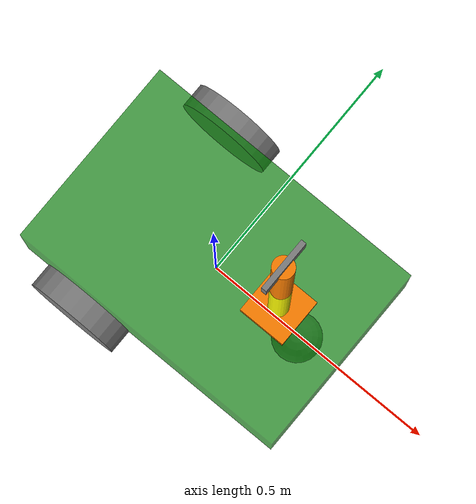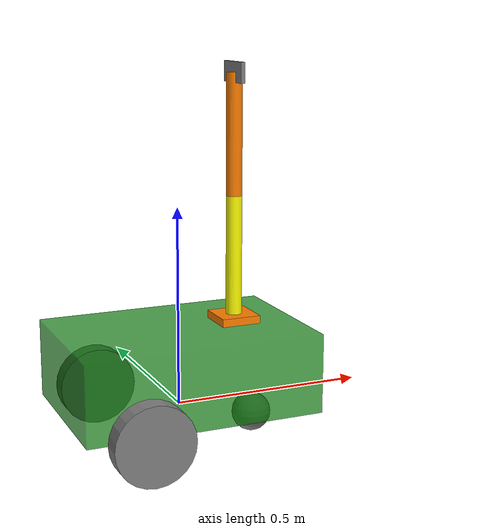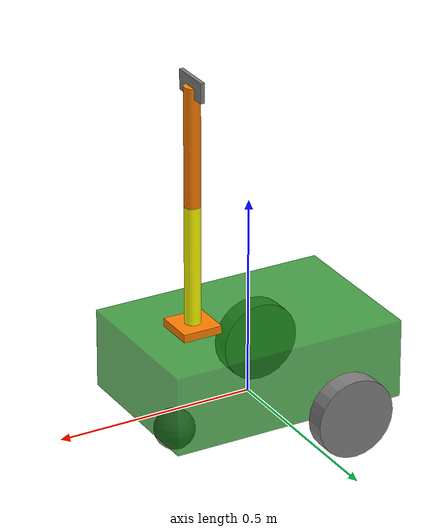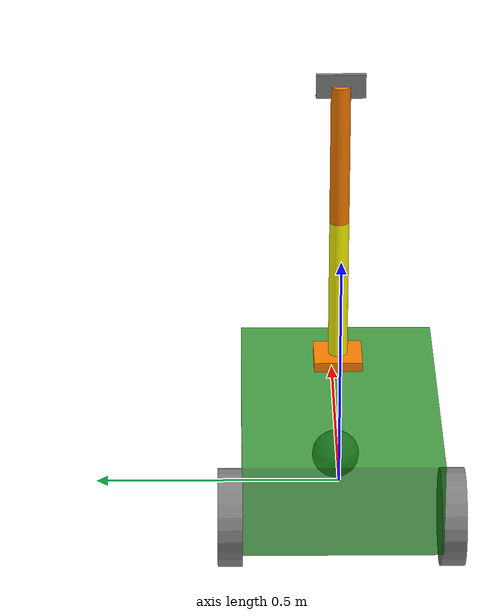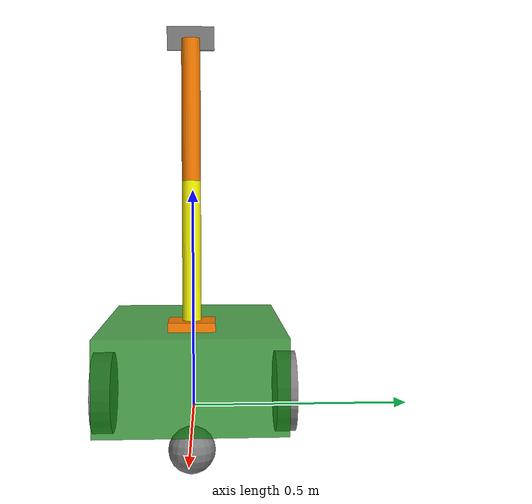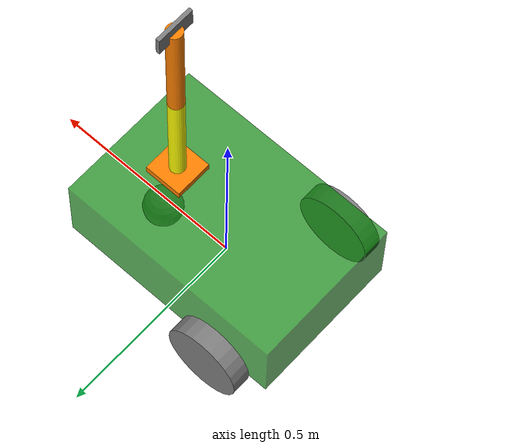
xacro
<?xml version="1.0"?>
<robot name="my_robot" xmlns:xacro="http://www.ros.org/wiki/xacro">

    <xacro:include filename="common_properties.xacro"/>
    <xacro:include filename="mobile_base.xacro" />
    <xacro:include filename="mobile_base_gazebo.xacro" />
    <xacro:include filename="arm.xacro" />
    <xacro:include filename="arm_gazebo.xacro"/>

    <joint name="mobile_base_arm_joint" type="fixed">
        <parent link="base_link"/>
        <child link="arm_base_link"/>
        <origin xyz="${base_length / 4.0} 0 ${base_height}" rpy="0 0 0"/>
    </joint>

    <!-- Only 1 camera on the arm -->
    <xacro:include filename="camera.xacro" />
</robot>

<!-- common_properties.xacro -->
<robot xmlns:xacro="http://www.ros.org/wiki/xacro">

    <material name="green">
        <color rgba="0 0.5 0 0.7"/>
    </material>

    <material name="grey">
        <color rgba="0.5 0.5 0.5 1"/>
    </material>

    <material name="orange">
        <color rgba="1.0 0.5 0.0 1.0"/>
    </material>

    <material name="yellow">
        <color rgba="1.0 1.0 0.0 1.0" />
    </material>

    <!-- Macro for solid box inertia -->
    <xacro:macro name="box_inertia" params="m l w h xyz rpy">
        <inertial>
            <origin xyz="${xyz}" rpy="${rpy}" />
            <mass value="${m}" />
            <inertia
                ixx="${(m / 12) * (h * h + l * l)}"
                iyy="${(m / 12) * (l * l + w * w)}"
                izz="${(m / 12) * (w * w + h * h)}"
                ixy="0"
                ixz="0"
                iyz="0" />
        </inertial>
    </xacro:macro>

    <!-- Macro for solid cylinder inertia -->
    <xacro:macro name="cylinder_inertia" params="m r h xyz rpy">
        <inertial>
            <origin xyz="${xyz}" rpy="${rpy}" />
            <mass value="${m}" />
            <inertia
                ixx="${(m / 12) * (3 * r * r + h * h)}"
                iyy="${(m / 12) * (3 * r * r + h * h)}"
                izz="${(m / 2) * r * r}"
                ixy="0"
                ixz="0"
                iyz="0" />
        </inertial>
    </xacro:macro>

    <!-- Macro for solid sphere inertia -->
    <xacro:macro name="sphere_inertia" params="m r xyz rpy">
        <inertial>
            <origin xyz="${xyz}" rpy="${rpy}" />
            <mass value="${m}" />
            <inertia
                ixx="${(2 / 5) * m * r * r}"
                iyy="${(2 / 5) * m * r * r}"
                izz="${(2 / 5) * m * r * r}"
                ixy="0"
                ixz="0"
                iyz="0" />
        </inertial>
    </xacro:macro>
</robot>

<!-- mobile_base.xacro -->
<robot xmlns:xacro="http://www.ros.org/wiki/xacro">

    <!-- SIZE MACROS -->
    <xacro:property name="base_length" value="0.6"/>
    <xacro:property name="base_width" value="0.4" />
    <xacro:property name="base_height" value="0.2"/>
    <xacro:property name="wheel_radius" value="0.1"/>
    <xacro:property name="wheel_length" value="0.05"/>

    <link name="base_link">
        <visual>
            <geometry>
                <box size="${base_length} ${base_width} ${base_height}"/>
            </geometry>
            <origin xyz="0 0 ${base_height / 2.0}" rpy="0 0 0"/>
            <material name="green"/>
        </visual>
        <collision>
            <geometry>
                <box size="${base_length} ${base_width} ${base_height}"/>
            </geometry>
            <origin xyz="0 0 ${base_height / 2.0}" rpy="0 0 0"/>
        </collision>
        <xacro:box_inertia m="5.0" l="${2*base_length}" w="${2*base_width}" h="${2*base_height}" xyz="0 0 ${base_height / 2.0}" rpy="0 0 0"/>
    </link>

    <xacro:macro name="wheel_link" params="prefix">
        <link name="${prefix}_wheel_link">
            <visual>
                <geometry>
                    <cylinder radius="${wheel_radius}" length="${wheel_length}"/>
                </geometry>
                <origin xyz="0 0 0" rpy="${pi / 2.0} 0 0"/>
                <material name="grey"/>
            </visual>
            <collision>
                <geometry>
                    <cylinder radius="${wheel_radius}" length="${wheel_length}"/>
                </geometry>
                <origin xyz="0 0 0" rpy="${pi / 2.0} 0 0"/>
            </collision>
            <xacro:cylinder_inertia m="1.0" r="${2*wheel_radius}" h="${2*wheel_length}" xyz="0 0 0" rpy="${pi / 2.0} 0 0"/>
        </link>
    </xacro:macro> <!-- Missing closing tag -->

    <xacro:wheel_link prefix="right" />
    <xacro:wheel_link prefix="left" />

    <link name="caster_wheel_link">
        <visual>
            <geometry>
                <sphere radius="${wheel_radius / 2.0}"/>
            </geometry>
            <origin xyz="0 0 0" rpy="0 0 0"/>
            <material name="grey"/>
        </visual>
        <collision>
            <geometry>
                <sphere radius="${wheel_radius / 2.0}"/>
            </geometry>
            <origin xyz="0 0 0" rpy="0 0 0"/>
        </collision>
        <xacro:sphere_inertia m="0.5" r="${2*wheel_radius / 2.0}" xyz="0 0 0" rpy="0 0 0"/>
    </link>

    <link name="base_footprint"/>

    <joint name="base_right_wheel_joint" type="continuous">
        <parent link="base_link"/>
        <child link="right_wheel_link"/>
        <origin xyz="${-base_length / 4.0} ${-(base_width + wheel_length) / 2.0} 0" rpy="0 0 0"/>
        <axis xyz="0 1 0"/>
    </joint>
    <joint name="base_left_wheel_joint" type="continuous">
        <parent link="base_link"/>
        <child link="left_wheel_link"/>
        <origin xyz="${-base_length / 4.0} ${(base_width + wheel_length) / 2.0} 0" rpy="0 0 0"/>
        <axis xyz="0 1 0"/>
    </joint>
    <joint name="base_caster_wheel_joint" type="fixed">
        <parent link="base_link"/>
        <child link="caster_wheel_link"/>
        <origin xyz="${base_length / 3.0} 0 ${-(wheel_radius / 2.0)}" rpy="0 0 0"/>
    </joint>
    <joint name="base_joint" type="fixed">
        <parent link="base_footprint"/>
        <child link="base_link"/>
        <origin xyz="0 0 0" rpy="0 0 0"/>
    </joint>

</robot>

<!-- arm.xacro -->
<robot xmlns:xacro="http://www.ros.org/wiki/xacro">

    <!-- SIZE MACROS -->
    <xacro:property name="arm_base_length" value="0.1"/>
    <xacro:property name="arm_base_width" value="0.1" />
    <xacro:property name="arm_base_height" value="0.02"/>
    <xacro:property name="cylinder_radius" value="0.02"/>
    <xacro:property name="cylinder_length" value="0.3"/>

    <!-- Base Link -->
    <link name="arm_base_link">
        <visual>
            <geometry>
                <box size="${arm_base_length} ${arm_base_width} ${arm_base_height}"/>
            </geometry>
            <origin xyz="0 0 ${arm_base_height / 2.0}" rpy="0 0 0"/>
            <material name="orange"/>
        </visual>
        <collision>
            <geometry>
                <box size="${arm_base_length} ${arm_base_width} ${arm_base_height}"/>
            </geometry>
            <origin xyz="0 0 ${arm_base_height / 2.0}" rpy="0 0 0"/>
        </collision>
        <xacro:box_inertia m="0.5" l="${2*arm_base_length}" w="${2*arm_base_width}" h="${2*arm_base_height}"
                           xyz="0 0 ${arm_base_length / 2.0}" rpy="0 0 0" />
    </link>

    <!-- Forearm Link -->
    <link name="forearm_link">
        <visual>
            <geometry>
                <cylinder radius="${cylinder_radius}" length="${cylinder_length}"/>
            </geometry>
            <origin xyz="0 0 ${cylinder_length / 2.0}" rpy="0 0 0"/>
            <material name="yellow"/>
        </visual>
        <collision>
            <geometry>
                <cylinder radius="${cylinder_radius}" length="${cylinder_length}"/>
            </geometry>
            <origin xyz="0 0 ${cylinder_length / 2.0}" rpy="0 0 0"/>
        </collision>
        <xacro:cylinder_inertia m="0.3" r="${2*cylinder_radius}" h="${2*cylinder_length}"
                                xyz="0 0 ${cylinder_length / 2.0}" rpy="0 0 0" />
    </link>

    <!-- Hand Link -->
    <link name="hand_link">
        <visual>
            <geometry>
                <cylinder radius="${cylinder_radius}" length="${cylinder_length}"/>
            </geometry>
            <origin xyz="0 0 ${cylinder_length / 2.0}" rpy="0 0 0"/>
            <material name="orange"/>
        </visual>
        <collision>
            <geometry>
                <cylinder radius="${cylinder_radius}" length="${cylinder_length}"/>
            </geometry>
            <origin xyz="0 0 ${cylinder_length / 2.0}" rpy="0 0 0"/>
        </collision>
        <xacro:cylinder_inertia m="0.3" r="${2*cylinder_radius}" h="${2*cylinder_length}"
                                xyz="0 0 ${cylinder_length / 2.0}" rpy="0 0 0" />
    </link>

    <!-- Forearm Joint -->
    <joint name="arm_base_forearm_joint" type="revolute">
        <parent link="arm_base_link"/>
        <child link="forearm_link"/>
        <origin xyz="0 0 ${arm_base_height}" rpy="0 0 0"/>
        <axis xyz="0 1 0"/>
        <limit lower="0" upper="${pi / 2.0}" effort="100" velocity="100"/>
        <dynamics friction="0.05" damping="0.1"/>
    </joint>

    <!-- Hand Joint -->
    <joint name="forearm_hand_joint" type="revolute">
        <parent link="forearm_link"/>
        <child link="hand_link"/>
        <origin xyz="0 0 ${cylinder_length}" rpy="0 0 0"/>
        <axis xyz="0 1 0"/>
        <limit lower="0" upper="${pi / 2.0}" effort="100" velocity="100"/>
        <dynamics friction="0.05" damping="0.1"/>
    </joint>

</robot>

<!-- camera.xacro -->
<robot xmlns:xacro="http://www.ros.org/wiki/xacro">

    <xacro:property name="camera_length" value="0.01"/>
    <xacro:property name="camera_width" value="0.1"/>
    <xacro:property name="camera_height" value="0.05"/>

    <!-- Camera at the Tip of the Arm -->
    <link name="camera_link">
        <visual>
            <geometry>
                <box size="${camera_length} ${camera_width} ${camera_height}"/>
            </geometry>
            <material name="grey"/>
        </visual>
        <collision>
            <geometry>
                <box size="${camera_length} ${camera_width} ${camera_height}"/>
            </geometry>
        </collision>
        <xacro:box_inertia m="0.1" l="${camera_length}" w="${camera_width}" h="${camera_height}" xyz="0 0 0" rpy="0 0 0" />
    </link>

    <joint name="arm_camera_joint" type="fixed">
        <parent link="hand_link"/>
        <child link="camera_link"/>
        <origin xyz="0 0 ${cylinder_length}" rpy="0 0 0"/> <!-- Position at the tip of the arm -->
    </joint>

    <!-- Gazebo Camera Sensor Configuration -->
    <gazebo reference="camera_link">
        <material>Gazebo/Yellow</material>
        <sensor name="camera_sensor" type="camera">
            <pose>0 0 0 0 0 0</pose>
            <visualize>true</visualize>
            <update_rate>10</update_rate>
            <plugin name="camera_plugin" filename="libgazebo_ros_camera.so">
                <frame_name>camera_link</frame_name>
            </plugin>
        </sensor>
    </gazebo>

</robot>
